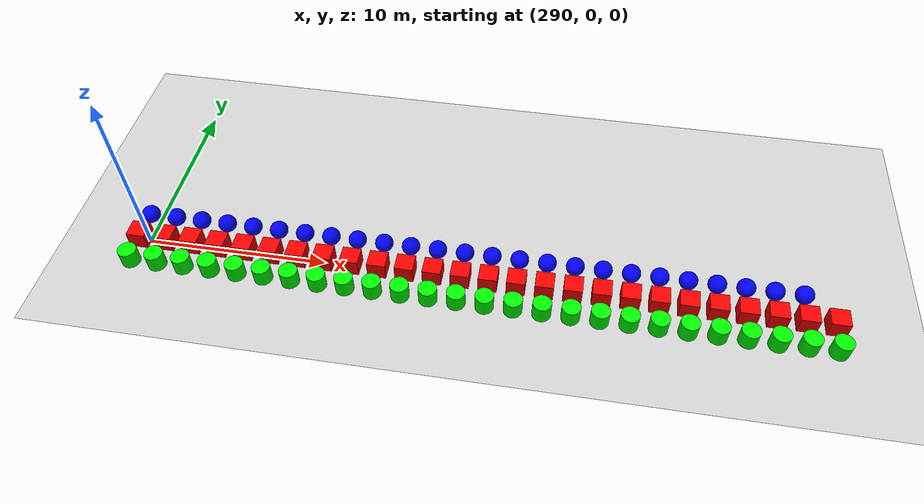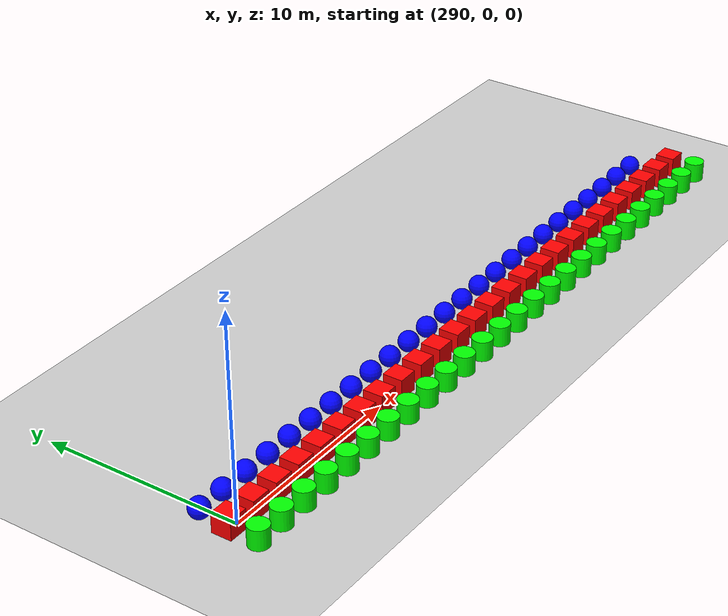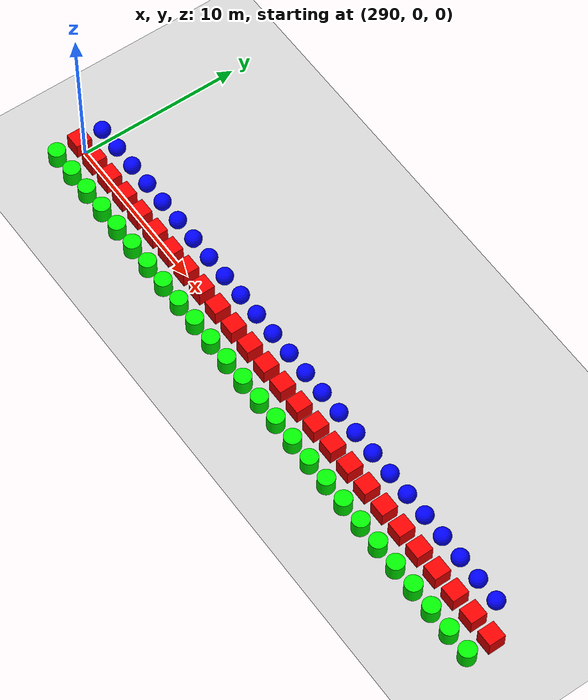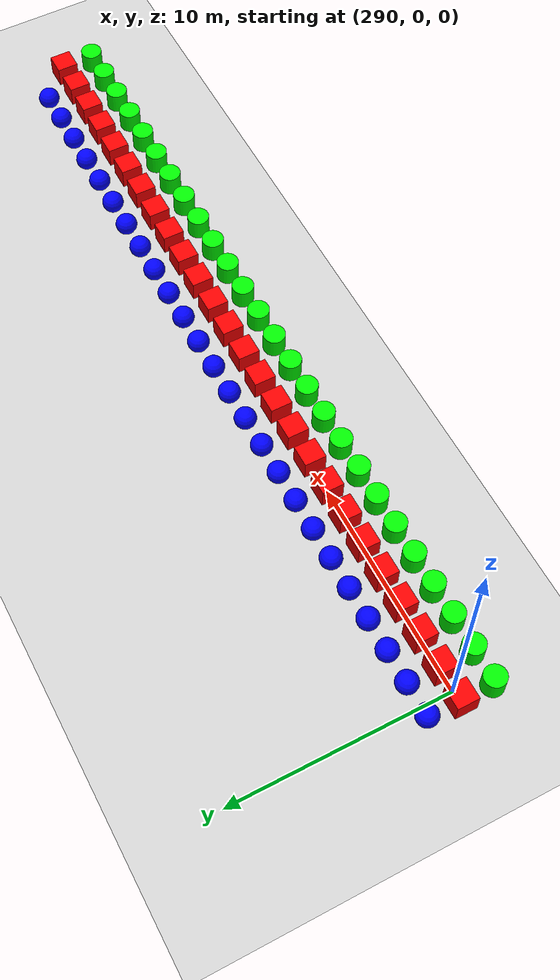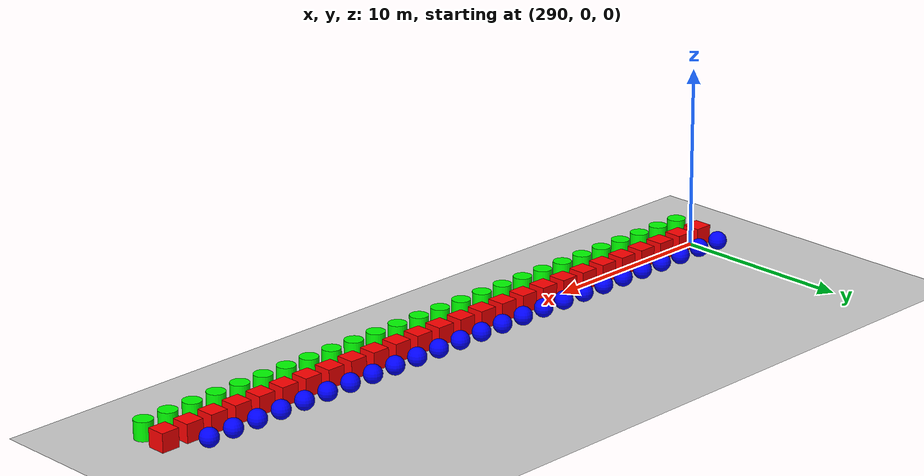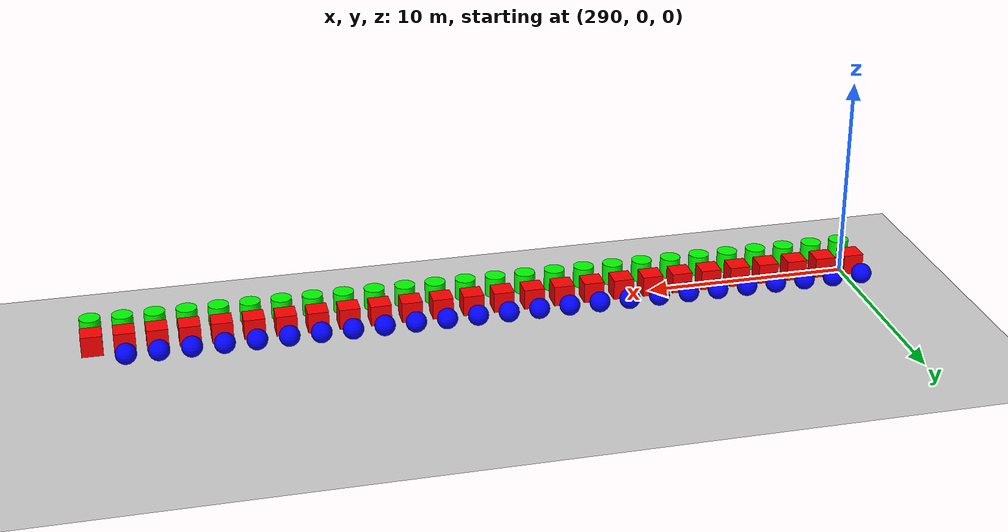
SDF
<sdf version="1.6">
 <world name="shapes">
  <model name="ground_plane">
   <static>true</static>
   <link name="link">
    <collision name="collision">
     <geometry><plane><normal>0 0 1</normal><size>100 100</size></plane></geometry>
    </collision>
    <visual name="visual">
     <geometry><plane><normal>0 0 1</normal><size>100 100</size></plane></geometry>
     <material>
      <ambient>0.8 0.8 0.8 1</ambient>
      <diffuse>0.8 0.8 0.8 1</diffuse>
      <specular>0.8 0.8 0.8 1</specular>
     </material>
    </visual>
   </link>
  </model>
  <model name="box_693">
   <static>false</static>
   <pose>289.5 0 0.5 0 0 0</pose>
   <link name="box_link">
    <inertial>
     <inertia><ixx>1</ixx><ixy>0</ixy><ixz>0</ixz><iyy>1</iyy><iyz>0</iyz><izz>1</izz></inertia>
     <mass>1.0</mass>
    </inertial>
    <collision name="box_collision"><geometry><box><size>1 1 1</size></box></geometry></collision>
    <visual name="box_visual">
     <geometry><box><size>1 1 1</size></box></geometry>
     <material><ambient>1 0 0 1</ambient><diffuse>1 0 0 1</diffuse><specular>1 0 0 1</specular></material>
    </visual>
   </link>
  </model>
  <model name="cylinder_693">
   <static>false</static>
   <pose>289.5 -1.5 0.5 0 0 0</pose>
   <link name="cylinder_link">
    <inertial>
     <inertia><ixx>2</ixx><ixy>0</ixy><ixz>0</ixz><iyy>2</iyy><iyz>0</iyz><izz>2</izz></inertia>
     <mass>2.0</mass>
    </inertial>
    <collision name="cylinder_collision">
     <geometry><cylinder><radius>0.5</radius><length>1.0</length></cylinder></geometry>
    </collision>
    <visual name="cylinder_visual">
     <geometry><cylinder><radius>0.5</radius><length>1.0</length></cylinder></geometry>
     <material><ambient>0 1 0 1</ambient><diffuse>0 1 0 1</diffuse><specular>0 1 0 1</specular></material>
    </visual>
   </link>
  </model>
  <model name="sphere_693">
   <static>false</static>
   <pose>289.5 1.5 0.5 0 0 0</pose>
   <link name="sphere_link">
    <inertial>
     <inertia><ixx>3</ixx><ixy>0</ixy><ixz>0</ixz><iyy>3</iyy><iyz>0</iyz><izz>3</izz></inertia>
     <mass>3.0</mass>
    </inertial>
    <collision name="sphere_collision"><geometry><sphere><radius>0.5</radius></sphere></geometry></collision>
    <visual name="sphere_visual">
     <geometry><sphere><radius>0.5</radius></sphere></geometry>
     <material><ambient>0 0 1 1</ambient><diffuse>0 0 1 1</diffuse><specular>0 0 1 1</specular></material>
    </visual>
   </link>
  </model>
  <model name="box_694">
   <static>false</static>
   <pose>291.0 0 0.5 0 0 0</pose>
   <link name="box_link">
    <inertial>
     <inertia><ixx>1</ixx><ixy>0</ixy><ixz>0</ixz><iyy>1</iyy><iyz>0</iyz><izz>1</izz></inertia>
     <mass>1.0</mass>
    </inertial>
    <collision name="box_collision"><geometry><box><size>1 1 1</size></box></geometry></collision>
    <visual name="box_visual">
     <geometry><box><size>1 1 1</size></box></geometry>
     <material><ambient>1 0 0 1</ambient><diffuse>1 0 0 1</diffuse><specular>1 0 0 1</specular></material>
    </visual>
   </link>
  </model>
  <model name="cylinder_694">
   <static>false</static>
   <pose>291.0 -1.5 0.5 0 0 0</pose>
   <link name="cylinder_link">
    <inertial>
     <inertia><ixx>2</ixx><ixy>0</ixy><ixz>0</ixz><iyy>2</iyy><iyz>0</iyz><izz>2</izz></inertia>
     <mass>2.0</mass>
    </inertial>
    <collision name="cylinder_collision">
     <geometry><cylinder><radius>0.5</radius><length>1.0</length></cylinder></geometry>
    </collision>
    <visual name="cylinder_visual">
     <geometry><cylinder><radius>0.5</radius><length>1.0</length></cylinder></geometry>
     <material><ambient>0 1 0 1</ambient><diffuse>0 1 0 1</diffuse><specular>0 1 0 1</specular></material>
    </visual>
   </link>
  </model>
  <model name="sphere_694">
   <static>false</static>
   <pose>291.0 1.5 0.5 0 0 0</pose>
   <link name="sphere_link">
    <inertial>
     <inertia><ixx>3</ixx><ixy>0</ixy><ixz>0</ixz><iyy>3</iyy><iyz>0</iyz><izz>3</izz></inertia>
     <mass>3.0</mass>
    </inertial>
    <collision name="sphere_collision"><geometry><sphere><radius>0.5</radius></sphere></geometry></collision>
    <visual name="sphere_visual">
     <geometry><sphere><radius>0.5</radius></sphere></geometry>
     <material><ambient>0 0 1 1</ambient><diffuse>0 0 1 1</diffuse><specular>0 0 1 1</specular></material>
    </visual>
   </link>
  </model>
  <model name="box_695">
   <static>false</static>
   <pose>292.5 0 0.5 0 0 0</pose>
   <link name="box_link">
    <inertial>
     <inertia><ixx>1</ixx><ixy>0</ixy><ixz>0</ixz><iyy>1</iyy><iyz>0</iyz><izz>1</izz></inertia>
     <mass>1.0</mass>
    </inertial>
    <collision name="box_collision"><geometry><box><size>1 1 1</size></box></geometry></collision>
    <visual name="box_visual">
     <geometry><box><size>1 1 1</size></box></geometry>
     <material><ambient>1 0 0 1</ambient><diffuse>1 0 0 1</diffuse><specular>1 0 0 1</specular></material>
    </visual>
   </link>
  </model>
  <model name="cylinder_695">
   <static>false</static>
   <pose>292.5 -1.5 0.5 0 0 0</pose>
   <link name="cylinder_link">
    <inertial>
     <inertia><ixx>2</ixx><ixy>0</ixy><ixz>0</ixz><iyy>2</iyy><iyz>0</iyz><izz>2</izz></inertia>
     <mass>2.0</mass>
    </inertial>
    <collision name="cylinder_collision">
     <geometry><cylinder><radius>0.5</radius><length>1.0</length></cylinder></geometry>
    </collision>
    <visual name="cylinder_visual">
     <geometry><cylinder><radius>0.5</radius><length>1.0</length></cylinder></geometry>
     <material><ambient>0 1 0 1</ambient><diffuse>0 1 0 1</diffuse><specular>0 1 0 1</specular></material>
    </visual>
   </link>
  </model>
  <model name="sphere_695">
   <static>false</static>
   <pose>292.5 1.5 0.5 0 0 0</pose>
   <link name="sphere_link">
    <inertial>
     <inertia><ixx>3</ixx><ixy>0</ixy><ixz>0</ixz><iyy>3</iyy><iyz>0</iyz><izz>3</izz></inertia>
     <mass>3.0</mass>
    </inertial>
    <collision name="sphere_collision"><geometry><sphere><radius>0.5</radius></sphere></geometry></collision>
    <visual name="sphere_visual">
     <geometry><sphere><radius>0.5</radius></sphere></geometry>
     <material><ambient>0 0 1 1</ambient><diffuse>0 0 1 1</diffuse><specular>0 0 1 1</specular></material>
    </visual>
   </link>
  </model>
  <model name="box_696">
   <static>false</static>
   <pose>294.0 0 0.5 0 0 0</pose>
   <link name="box_link">
    <inertial>
     <inertia><ixx>1</ixx><ixy>0</ixy><ixz>0</ixz><iyy>1</iyy><iyz>0</iyz><izz>1</izz></inertia>
     <mass>1.0</mass>
    </inertial>
    <collision name="box_collision"><geometry><box><size>1 1 1</size></box></geometry></collision>
    <visual name="box_visual">
     <geometry><box><size>1 1 1</size></box></geometry>
     <material><ambient>1 0 0 1</ambient><diffuse>1 0 0 1</diffuse><specular>1 0 0 1</specular></material>
    </visual>
   </link>
  </model>
  <model name="cylinder_696">
   <static>false</static>
   <pose>294.0 -1.5 0.5 0 0 0</pose>
   <link name="cylinder_link">
    <inertial>
     <inertia><ixx>2</ixx><ixy>0</ixy><ixz>0</ixz><iyy>2</iyy><iyz>0</iyz><izz>2</izz></inertia>
     <mass>2.0</mass>
    </inertial>
    <collision name="cylinder_collision">
     <geometry><cylinder><radius>0.5</radius><length>1.0</length></cylinder></geometry>
    </collision>
    <visual name="cylinder_visual">
     <geometry><cylinder><radius>0.5</radius><length>1.0</length></cylinder></geometry>
     <material><ambient>0 1 0 1</ambient><diffuse>0 1 0 1</diffuse><specular>0 1 0 1</specular></material>
    </visual>
   </link>
  </model>
  <model name="sphere_696">
   <static>false</static>
   <pose>294.0 1.5 0.5 0 0 0</pose>
   <link name="sphere_link">
    <inertial>
     <inertia><ixx>3</ixx><ixy>0</ixy><ixz>0</ixz><iyy>3</iyy><iyz>0</iyz><izz>3</izz></inertia>
     <mass>3.0</mass>
    </inertial>
    <collision name="sphere_collision"><geometry><sphere><radius>0.5</radius></sphere></geometry></collision>
    <visual name="sphere_visual">
     <geometry><sphere><radius>0.5</radius></sphere></geometry>
     <material><ambient>0 0 1 1</ambient><diffuse>0 0 1 1</diffuse><specular>0 0 1 1</specular></material>
    </visual>
   </link>
  </model>
  <model name="box_697">
   <static>false</static>
   <pose>295.5 0 0.5 0 0 0</pose>
   <link name="box_link">
    <inertial>
     <inertia><ixx>1</ixx><ixy>0</ixy><ixz>0</ixz><iyy>1</iyy><iyz>0</iyz><izz>1</izz></inertia>
     <mass>1.0</mass>
    </inertial>
    <collision name="box_collision"><geometry><box><size>1 1 1</size></box></geometry></collision>
    <visual name="box_visual">
     <geometry><box><size>1 1 1</size></box></geometry>
     <material><ambient>1 0 0 1</ambient><diffuse>1 0 0 1</diffuse><specular>1 0 0 1</specular></material>
    </visual>
   </link>
  </model>
  <model name="cylinder_697">
   <static>false</static>
   <pose>295.5 -1.5 0.5 0 0 0</pose>
   <link name="cylinder_link">
    <inertial>
     <inertia><ixx>2</ixx><ixy>0</ixy><ixz>0</ixz><iyy>2</iyy><iyz>0</iyz><izz>2</izz></inertia>
     <mass>2.0</mass>
    </inertial>
    <collision name="cylinder_collision">
     <geometry><cylinder><radius>0.5</radius><length>1.0</length></cylinder></geometry>
    </collision>
    <visual name="cylinder_visual">
     <geometry><cylinder><radius>0.5</radius><length>1.0</length></cylinder></geometry>
     <material><ambient>0 1 0 1</ambient><diffuse>0 1 0 1</diffuse><specular>0 1 0 1</specular></material>
    </visual>
   </link>
  </model>
  <model name="sphere_697">
   <static>false</static>
   <pose>295.5 1.5 0.5 0 0 0</pose>
   <link name="sphere_link">
    <inertial>
     <inertia><ixx>3</ixx><ixy>0</ixy><ixz>0</ixz><iyy>3</iyy><iyz>0</iyz><izz>3</izz></inertia>
     <mass>3.0</mass>
    </inertial>
    <collision name="sphere_collision"><geometry><sphere><radius>0.5</radius></sphere></geometry></collision>
    <visual name="sphere_visual">
     <geometry><sphere><radius>0.5</radius></sphere></geometry>
     <material><ambient>0 0 1 1</ambient><diffuse>0 0 1 1</diffuse><specular>0 0 1 1</specular></material>
    </visual>
   </link>
  </model>
  <model name="box_698">
   <static>false</static>
   <pose>297.0 0 0.5 0 0 0</pose>
   <link name="box_link">
    <inertial>
     <inertia><ixx>1</ixx><ixy>0</ixy><ixz>0</ixz><iyy>1</iyy><iyz>0</iyz><izz>1</izz></inertia>
     <mass>1.0</mass>
    </inertial>
    <collision name="box_collision"><geometry><box><size>1 1 1</size></box></geometry></collision>
    <visual name="box_visual">
     <geometry><box><size>1 1 1</size></box></geometry>
     <material><ambient>1 0 0 1</ambient><diffuse>1 0 0 1</diffuse><specular>1 0 0 1</specular></material>
    </visual>
   </link>
  </model>
  <model name="cylinder_698">
   <static>false</static>
   <pose>297.0 -1.5 0.5 0 0 0</pose>
   <link name="cylinder_link">
    <inertial>
     <inertia><ixx>2</ixx><ixy>0</ixy><ixz>0</ixz><iyy>2</iyy><iyz>0</iyz><izz>2</izz></inertia>
     <mass>2.0</mass>
    </inertial>
    <collision name="cylinder_collision">
     <geometry><cylinder><radius>0.5</radius><length>1.0</length></cylinder></geometry>
    </collision>
    <visual name="cylinder_visual">
     <geometry><cylinder><radius>0.5</radius><length>1.0</length></cylinder></geometry>
     <material><ambient>0 1 0 1</ambient><diffuse>0 1 0 1</diffuse><specular>0 1 0 1</specular></material>
    </visual>
   </link>
  </model>
  <model name="sphere_698">
   <static>false</static>
   <pose>297.0 1.5 0.5 0 0 0</pose>
   <link name="sphere_link">
    <inertial>
     <inertia><ixx>3</ixx><ixy>0</ixy><ixz>0</ixz><iyy>3</iyy><iyz>0</iyz><izz>3</izz></inertia>
     <mass>3.0</mass>
    </inertial>
    <collision name="sphere_collision"><geometry><sphere><radius>0.5</radius></sphere></geometry></collision>
    <visual name="sphere_visual">
     <geometry><sphere><radius>0.5</radius></sphere></geometry>
     <material><ambient>0 0 1 1</ambient><diffuse>0 0 1 1</diffuse><specular>0 0 1 1</specular></material>
    </visual>
   </link>
  </model>
  <model name="box_699">
   <static>false</static>
   <pose>298.5 0 0.5 0 0 0</pose>
   <link name="box_link">
    <inertial>
     <inertia><ixx>1</ixx><ixy>0</ixy><ixz>0</ixz><iyy>1</iyy><iyz>0</iyz><izz>1</izz></inertia>
     <mass>1.0</mass>
    </inertial>
    <collision name="box_collision"><geometry><box><size>1 1 1</size></box></geometry></collision>
    <visual name="box_visual">
     <geometry><box><size>1 1 1</size></box></geometry>
     <material><ambient>1 0 0 1</ambient><diffuse>1 0 0 1</diffuse><specular>1 0 0 1</specular></material>
    </visual>
   </link>
  </model>
  <model name="cylinder_699">
   <static>false</static>
   <pose>298.5 -1.5 0.5 0 0 0</pose>
   <link name="cylinder_link">
    <inertial>
     <inertia><ixx>2</ixx><ixy>0</ixy><ixz>0</ixz><iyy>2</iyy><iyz>0</iyz><izz>2</izz></inertia>
     <mass>2.0</mass>
    </inertial>
    <collision name="cylinder_collision">
     <geometry><cylinder><radius>0.5</radius><length>1.0</length></cylinder></geometry>
    </collision>
    <visual name="cylinder_visual">
     <geometry><cylinder><radius>0.5</radius><length>1.0</length></cylinder></geometry>
     <material><ambient>0 1 0 1</ambient><diffuse>0 1 0 1</diffuse><specular>0 1 0 1</specular></material>
    </visual>
   </link>
  </model>
  <model name="sphere_699">
   <static>false</static>
   <pose>298.5 1.5 0.5 0 0 0</pose>
   <link name="sphere_link">
    <inertial>
     <inertia><ixx>3</ixx><ixy>0</ixy><ixz>0</ixz><iyy>3</iyy><iyz>0</iyz><izz>3</izz></inertia>
     <mass>3.0</mass>
    </inertial>
    <collision name="sphere_collision"><geometry><sphere><radius>0.5</radius></sphere></geometry></collision>
    <visual name="sphere_visual">
     <geometry><sphere><radius>0.5</radius></sphere></geometry>
     <material><ambient>0 0 1 1</ambient><diffuse>0 0 1 1</diffuse><specular>0 0 1 1</specular></material>
    </visual>
   </link>
  </model>
  <model name="box_700">
   <static>false</static>
   <pose>300.0 0 0.5 0 0 0</pose>
   <link name="box_link">
    <inertial>
     <inertia><ixx>1</ixx><ixy>0</ixy><ixz>0</ixz><iyy>1</iyy><iyz>0</iyz><izz>1</izz></inertia>
     <mass>1.0</mass>
    </inertial>
    <collision name="box_collision"><geometry><box><size>1 1 1</size></box></geometry></collision>
    <visual name="box_visual">
     <geometry><box><size>1 1 1</size></box></geometry>
     <material><ambient>1 0 0 1</ambient><diffuse>1 0 0 1</diffuse><specular>1 0 0 1</specular></material>
    </visual>
   </link>
  </model>
  <model name="cylinder_700">
   <static>false</static>
   <pose>300.0 -1.5 0.5 0 0 0</pose>
   <link name="cylinder_link">
    <inertial>
     <inertia><ixx>2</ixx><ixy>0</ixy><ixz>0</ixz><iyy>2</iyy><iyz>0</iyz><izz>2</izz></inertia>
     <mass>2.0</mass>
    </inertial>
    <collision name="cylinder_collision">
     <geometry><cylinder><radius>0.5</radius><length>1.0</length></cylinder></geometry>
    </collision>
    <visual name="cylinder_visual">
     <geometry><cylinder><radius>0.5</radius><length>1.0</length></cylinder></geometry>
     <material><ambient>0 1 0 1</ambient><diffuse>0 1 0 1</diffuse><specular>0 1 0 1</specular></material>
    </visual>
   </link>
  </model>
  <model name="sphere_700">
   <static>false</static>
   <pose>300.0 1.5 0.5 0 0 0</pose>
   <link name="sphere_link">
    <inertial>
     <inertia><ixx>3</ixx><ixy>0</ixy><ixz>0</ixz><iyy>3</iyy><iyz>0</iyz><izz>3</izz></inertia>
     <mass>3.0</mass>
    </inertial>
    <collision name="sphere_collision"><geometry><sphere><radius>0.5</radius></sphere></geometry></collision>
    <visual name="sphere_visual">
     <geometry><sphere><radius>0.5</radius></sphere></geometry>
     <material><ambient>0 0 1 1</ambient><diffuse>0 0 1 1</diffuse><specular>0 0 1 1</specular></material>
    </visual>
   </link>
  </model>
  <model name="box_701">
   <static>false</static>
   <pose>301.5 0 0.5 0 0 0</pose>
   <link name="box_link">
    <inertial>
     <inertia><ixx>1</ixx><ixy>0</ixy><ixz>0</ixz><iyy>1</iyy><iyz>0</iyz><izz>1</izz></inertia>
     <mass>1.0</mass>
    </inertial>
    <collision name="box_collision"><geometry><box><size>1 1 1</size></box></geometry></collision>
    <visual name="box_visual">
     <geometry><box><size>1 1 1</size></box></geometry>
     <material><ambient>1 0 0 1</ambient><diffuse>1 0 0 1</diffuse><specular>1 0 0 1</specular></material>
    </visual>
   </link>
  </model>
  <model name="cylinder_701">
   <static>false</static>
   <pose>301.5 -1.5 0.5 0 0 0</pose>
   <link name="cylinder_link">
    <inertial>
     <inertia><ixx>2</ixx><ixy>0</ixy><ixz>0</ixz><iyy>2</iyy><iyz>0</iyz><izz>2</izz></inertia>
     <mass>2.0</mass>
    </inertial>
    <collision name="cylinder_collision">
     <geometry><cylinder><radius>0.5</radius><length>1.0</length></cylinder></geometry>
    </collision>
    <visual name="cylinder_visual">
     <geometry><cylinder><radius>0.5</radius><length>1.0</length></cylinder></geometry>
     <material><ambient>0 1 0 1</ambient><diffuse>0 1 0 1</diffuse><specular>0 1 0 1</specular></material>
    </visual>
   </link>
  </model>
  <model name="sphere_701">
   <static>false</static>
   <pose>301.5 1.5 0.5 0 0 0</pose>
   <link name="sphere_link">
    <inertial>
     <inertia><ixx>3</ixx><ixy>0</ixy><ixz>0</ixz><iyy>3</iyy><iyz>0</iyz><izz>3</izz></inertia>
     <mass>3.0</mass>
    </inertial>
    <collision name="sphere_collision"><geometry><sphere><radius>0.5</radius></sphere></geometry></collision>
    <visual name="sphere_visual">
     <geometry><sphere><radius>0.5</radius></sphere></geometry>
     <material><ambient>0 0 1 1</ambient><diffuse>0 0 1 1</diffuse><specular>0 0 1 1</specular></material>
    </visual>
   </link>
  </model>
  <model name="box_702">
   <static>false</static>
   <pose>303.0 0 0.5 0 0 0</pose>
   <link name="box_link">
    <inertial>
     <inertia><ixx>1</ixx><ixy>0</ixy><ixz>0</ixz><iyy>1</iyy><iyz>0</iyz><izz>1</izz></inertia>
     <mass>1.0</mass>
    </inertial>
    <collision name="box_collision"><geometry><box><size>1 1 1</size></box></geometry></collision>
    <visual name="box_visual">
     <geometry><box><size>1 1 1</size></box></geometry>
     <material><ambient>1 0 0 1</ambient><diffuse>1 0 0 1</diffuse><specular>1 0 0 1</specular></material>
    </visual>
   </link>
  </model>
  <model name="cylinder_702">
   <static>false</static>
   <pose>303.0 -1.5 0.5 0 0 0</pose>
   <link name="cylinder_link">
    <inertial>
     <inertia><ixx>2</ixx><ixy>0</ixy><ixz>0</ixz><iyy>2</iyy><iyz>0</iyz><izz>2</izz></inertia>
     <mass>2.0</mass>
    </inertial>
    <collision name="cylinder_collision">
     <geometry><cylinder><radius>0.5</radius><length>1.0</length></cylinder></geometry>
    </collision>
    <visual name="cylinder_visual">
     <geometry><cylinder><radius>0.5</radius><length>1.0</length></cylinder></geometry>
     <material><ambient>0 1 0 1</ambient><diffuse>0 1 0 1</diffuse><specular>0 1 0 1</specular></material>
    </visual>
   </link>
  </model>
  <model name="sphere_702">
   <static>false</static>
   <pose>303.0 1.5 0.5 0 0 0</pose>
   <link name="sphere_link">
    <inertial>
     <inertia><ixx>3</ixx><ixy>0</ixy><ixz>0</ixz><iyy>3</iyy><iyz>0</iyz><izz>3</izz></inertia>
     <mass>3.0</mass>
    </inertial>
    <collision name="sphere_collision"><geometry><sphere><radius>0.5</radius></sphere></geometry></collision>
    <visual name="sphere_visual">
     <geometry><sphere><radius>0.5</radius></sphere></geometry>
     <material><ambient>0 0 1 1</ambient><diffuse>0 0 1 1</diffuse><specular>0 0 1 1</specular></material>
    </visual>
   </link>
  </model>
  <model name="box_703">
   <static>false</static>
   <pose>304.5 0 0.5 0 0 0</pose>
   <link name="box_link">
    <inertial>
     <inertia><ixx>1</ixx><ixy>0</ixy><ixz>0</ixz><iyy>1</iyy><iyz>0</iyz><izz>1</izz></inertia>
     <mass>1.0</mass>
    </inertial>
    <collision name="box_collision"><geometry><box><size>1 1 1</size></box></geometry></collision>
    <visual name="box_visual">
     <geometry><box><size>1 1 1</size></box></geometry>
     <material><ambient>1 0 0 1</ambient><diffuse>1 0 0 1</diffuse><specular>1 0 0 1</specular></material>
    </visual>
   </link>
  </model>
  <model name="cylinder_703">
   <static>false</static>
   <pose>304.5 -1.5 0.5 0 0 0</pose>
   <link name="cylinder_link">
    <inertial>
     <inertia><ixx>2</ixx><ixy>0</ixy><ixz>0</ixz><iyy>2</iyy><iyz>0</iyz><izz>2</izz></inertia>
     <mass>2.0</mass>
    </inertial>
    <collision name="cylinder_collision">
     <geometry><cylinder><radius>0.5</radius><length>1.0</length></cylinder></geometry>
    </collision>
    <visual name="cylinder_visual">
     <geometry><cylinder><radius>0.5</radius><length>1.0</length></cylinder></geometry>
     <material><ambient>0 1 0 1</ambient><diffuse>0 1 0 1</diffuse><specular>0 1 0 1</specular></material>
    </visual>
   </link>
  </model>
  <model name="sphere_703">
   <static>false</static>
   <pose>304.5 1.5 0.5 0 0 0</pose>
   <link name="sphere_link">
    <inertial>
     <inertia><ixx>3</ixx><ixy>0</ixy><ixz>0</ixz><iyy>3</iyy><iyz>0</iyz><izz>3</izz></inertia>
     <mass>3.0</mass>
    </inertial>
    <collision name="sphere_collision"><geometry><sphere><radius>0.5</radius></sphere></geometry></collision>
    <visual name="sphere_visual">
     <geometry><sphere><radius>0.5</radius></sphere></geometry>
     <material><ambient>0 0 1 1</ambient><diffuse>0 0 1 1</diffuse><specular>0 0 1 1</specular></material>
    </visual>
   </link>
  </model>
  <model name="box_704">
   <static>false</static>
   <pose>306.0 0 0.5 0 0 0</pose>
   <link name="box_link">
    <inertial>
     <inertia><ixx>1</ixx><ixy>0</ixy><ixz>0</ixz><iyy>1</iyy><iyz>0</iyz><izz>1</izz></inertia>
     <mass>1.0</mass>
    </inertial>
    <collision name="box_collision"><geometry><box><size>1 1 1</size></box></geometry></collision>
    <visual name="box_visual">
     <geometry><box><size>1 1 1</size></box></geometry>
     <material><ambient>1 0 0 1</ambient><diffuse>1 0 0 1</diffuse><specular>1 0 0 1</specular></material>
    </visual>
   </link>
  </model>
  <model name="cylinder_704">
   <static>false</static>
   <pose>306.0 -1.5 0.5 0 0 0</pose>
   <link name="cylinder_link">
    <inertial>
     <inertia><ixx>2</ixx><ixy>0</ixy><ixz>0</ixz><iyy>2</iyy><iyz>0</iyz><izz>2</izz></inertia>
     <mass>2.0</mass>
    </inertial>
    <collision name="cylinder_collision">
     <geometry><cylinder><radius>0.5</radius><length>1.0</length></cylinder></geometry>
    </collision>
    <visual name="cylinder_visual">
     <geometry><cylinder><radius>0.5</radius><length>1.0</length></cylinder></geometry>
     <material><ambient>0 1 0 1</ambient><diffuse>0 1 0 1</diffuse><specular>0 1 0 1</specular></material>
    </visual>
   </link>
  </model>
  <model name="sphere_704">
   <static>false</static>
   <pose>306.0 1.5 0.5 0 0 0</pose>
   <link name="sphere_link">
    <inertial>
     <inertia><ixx>3</ixx><ixy>0</ixy><ixz>0</ixz><iyy>3</iyy><iyz>0</iyz><izz>3</izz></inertia>
     <mass>3.0</mass>
    </inertial>
    <collision name="sphere_collision"><geometry><sphere><radius>0.5</radius></sphere></geometry></collision>
    <visual name="sphere_visual">
     <geometry><sphere><radius>0.5</radius></sphere></geometry>
     <material><ambient>0 0 1 1</ambient><diffuse>0 0 1 1</diffuse><specular>0 0 1 1</specular></material>
    </visual>
   </link>
  </model>
  <model name="box_705">
   <static>false</static>
   <pose>307.5 0 0.5 0 0 0</pose>
   <link name="box_link">
    <inertial>
     <inertia><ixx>1</ixx><ixy>0</ixy><ixz>0</ixz><iyy>1</iyy><iyz>0</iyz><izz>1</izz></inertia>
     <mass>1.0</mass>
    </inertial>
    <collision name="box_collision"><geometry><box><size>1 1 1</size></box></geometry></collision>
    <visual name="box_visual">
     <geometry><box><size>1 1 1</size></box></geometry>
     <material><ambient>1 0 0 1</ambient><diffuse>1 0 0 1</diffuse><specular>1 0 0 1</specular></material>
    </visual>
   </link>
  </model>
  <model name="cylinder_705">
   <static>false</static>
   <pose>307.5 -1.5 0.5 0 0 0</pose>
   <link name="cylinder_link">
    <inertial>
     <inertia><ixx>2</ixx><ixy>0</ixy><ixz>0</ixz><iyy>2</iyy><iyz>0</iyz><izz>2</izz></inertia>
     <mass>2.0</mass>
    </inertial>
    <collision name="cylinder_collision">
     <geometry><cylinder><radius>0.5</radius><length>1.0</length></cylinder></geometry>
    </collision>
    <visual name="cylinder_visual">
     <geometry><cylinder><radius>0.5</radius><length>1.0</length></cylinder></geometry>
     <material><ambient>0 1 0 1</ambient><diffuse>0 1 0 1</diffuse><specular>0 1 0 1</specular></material>
    </visual>
   </link>
  </model>
  <model name="sphere_705">
   <static>false</static>
   <pose>307.5 1.5 0.5 0 0 0</pose>
   <link name="sphere_link">
    <inertial>
     <inertia><ixx>3</ixx><ixy>0</ixy><ixz>0</ixz><iyy>3</iyy><iyz>0</iyz><izz>3</izz></inertia>
     <mass>3.0</mass>
    </inertial>
    <collision name="sphere_collision"><geometry><sphere><radius>0.5</radius></sphere></geometry></collision>
    <visual name="sphere_visual">
     <geometry><sphere><radius>0.5</radius></sphere></geometry>
     <material><ambient>0 0 1 1</ambient><diffuse>0 0 1 1</diffuse><specular>0 0 1 1</specular></material>
    </visual>
   </link>
  </model>
  <model name="box_706">
   <static>false</static>
   <pose>309.0 0 0.5 0 0 0</pose>
   <link name="box_link">
    <inertial>
     <inertia><ixx>1</ixx><ixy>0</ixy><ixz>0</ixz><iyy>1</iyy><iyz>0</iyz><izz>1</izz></inertia>
     <mass>1.0</mass>
    </inertial>
    <collision name="box_collision"><geometry><box><size>1 1 1</size></box></geometry></collision>
    <visual name="box_visual">
     <geometry><box><size>1 1 1</size></box></geometry>
     <material><ambient>1 0 0 1</ambient><diffuse>1 0 0 1</diffuse><specular>1 0 0 1</specular></material>
    </visual>
   </link>
  </model>
  <model name="cylinder_706">
   <static>false</static>
   <pose>309.0 -1.5 0.5 0 0 0</pose>
   <link name="cylinder_link">
    <inertial>
     <inertia><ixx>2</ixx><ixy>0</ixy><ixz>0</ixz><iyy>2</iyy><iyz>0</iyz><izz>2</izz></inertia>
     <mass>2.0</mass>
    </inertial>
    <collision name="cylinder_collision">
     <geometry><cylinder><radius>0.5</radius><length>1.0</length></cylinder></geometry>
    </collision>
    <visual name="cylinder_visual">
     <geometry><cylinder><radius>0.5</radius><length>1.0</length></cylinder></geometry>
     <material><ambient>0 1 0 1</ambient><diffuse>0 1 0 1</diffuse><specular>0 1 0 1</specular></material>
    </visual>
   </link>
  </model>
  <model name="sphere_706">
   <static>false</static>
   <pose>309.0 1.5 0.5 0 0 0</pose>
   <link name="sphere_link">
    <inertial>
     <inertia><ixx>3</ixx><ixy>0</ixy><ixz>0</ixz><iyy>3</iyy><iyz>0</iyz><izz>3</izz></inertia>
     <mass>3.0</mass>
    </inertial>
    <collision name="sphere_collision"><geometry><sphere><radius>0.5</radius></sphere></geometry></collision>
    <visual name="sphere_visual">
     <geometry><sphere><radius>0.5</radius></sphere></geometry>
     <material><ambient>0 0 1 1</ambient><diffuse>0 0 1 1</diffuse><specular>0 0 1 1</specular></material>
    </visual>
   </link>
  </model>
  <model name="box_707">
   <static>false</static>
   <pose>310.5 0 0.5 0 0 0</pose>
   <link name="box_link">
    <inertial>
     <inertia><ixx>1</ixx><ixy>0</ixy><ixz>0</ixz><iyy>1</iyy><iyz>0</iyz><izz>1</izz></inertia>
     <mass>1.0</mass>
    </inertial>
    <collision name="box_collision"><geometry><box><size>1 1 1</size></box></geometry></collision>
    <visual name="box_visual">
     <geometry><box><size>1 1 1</size></box></geometry>
     <material><ambient>1 0 0 1</ambient><diffuse>1 0 0 1</diffuse><specular>1 0 0 1</specular></material>
    </visual>
   </link>
  </model>
  <model name="cylinder_707">
   <static>false</static>
   <pose>310.5 -1.5 0.5 0 0 0</pose>
   <link name="cylinder_link">
    <inertial>
     <inertia><ixx>2</ixx><ixy>0</ixy><ixz>0</ixz><iyy>2</iyy><iyz>0</iyz><izz>2</izz></inertia>
     <mass>2.0</mass>
    </inertial>
    <collision name="cylinder_collision">
     <geometry><cylinder><radius>0.5</radius><length>1.0</length></cylinder></geometry>
    </collision>
    <visual name="cylinder_visual">
     <geometry><cylinder><radius>0.5</radius><length>1.0</length></cylinder></geometry>
     <material><ambient>0 1 0 1</ambient><diffuse>0 1 0 1</diffuse><specular>0 1 0 1</specular></material>
    </visual>
   </link>
  </model>
  <model name="sphere_707">
   <static>false</static>
   <pose>310.5 1.5 0.5 0 0 0</pose>
   <link name="sphere_link">
    <inertial>
     <inertia><ixx>3</ixx><ixy>0</ixy><ixz>0</ixz><iyy>3</iyy><iyz>0</iyz><izz>3</izz></inertia>
     <mass>3.0</mass>
    </inertial>
    <collision name="sphere_collision"><geometry><sphere><radius>0.5</radius></sphere></geometry></collision>
    <visual name="sphere_visual">
     <geometry><sphere><radius>0.5</radius></sphere></geometry>
     <material><ambient>0 0 1 1</ambient><diffuse>0 0 1 1</diffuse><specular>0 0 1 1</specular></material>
    </visual>
   </link>
  </model>
  <model name="box_708">
   <static>false</static>
   <pose>312.0 0 0.5 0 0 0</pose>
   <link name="box_link">
    <inertial>
     <inertia><ixx>1</ixx><ixy>0</ixy><ixz>0</ixz><iyy>1</iyy><iyz>0</iyz><izz>1</izz></inertia>
     <mass>1.0</mass>
    </inertial>
    <collision name="box_collision"><geometry><box><size>1 1 1</size></box></geometry></collision>
    <visual name="box_visual">
     <geometry><box><size>1 1 1</size></box></geometry>
     <material><ambient>1 0 0 1</ambient><diffuse>1 0 0 1</diffuse><specular>1 0 0 1</specular></material>
    </visual>
   </link>
  </model>
  <model name="cylinder_708">
   <static>false</static>
   <pose>312.0 -1.5 0.5 0 0 0</pose>
   <link name="cylinder_link">
    <inertial>
     <inertia><ixx>2</ixx><ixy>0</ixy><ixz>0</ixz><iyy>2</iyy><iyz>0</iyz><izz>2</izz></inertia>
     <mass>2.0</mass>
    </inertial>
    <collision name="cylinder_collision">
     <geometry><cylinder><radius>0.5</radius><length>1.0</length></cylinder></geometry>
    </collision>
    <visual name="cylinder_visual">
     <geometry><cylinder><radius>0.5</radius><length>1.0</length></cylinder></geometry>
     <material><ambient>0 1 0 1</ambient><diffuse>0 1 0 1</diffuse><specular>0 1 0 1</specular></material>
    </visual>
   </link>
  </model>
  <model name="sphere_708">
   <static>false</static>
   <pose>312.0 1.5 0.5 0 0 0</pose>
   <link name="sphere_link">
    <inertial>
     <inertia><ixx>3</ixx><ixy>0</ixy><ixz>0</ixz><iyy>3</iyy><iyz>0</iyz><izz>3</izz></inertia>
     <mass>3.0</mass>
    </inertial>
    <collision name="sphere_collision"><geometry><sphere><radius>0.5</radius></sphere></geometry></collision>
    <visual name="sphere_visual">
     <geometry><sphere><radius>0.5</radius></sphere></geometry>
     <material><ambient>0 0 1 1</ambient><diffuse>0 0 1 1</diffuse><specular>0 0 1 1</specular></material>
    </visual>
   </link>
  </model>
  <model name="box_709">
   <static>false</static>
   <pose>313.5 0 0.5 0 0 0</pose>
   <link name="box_link">
    <inertial>
     <inertia><ixx>1</ixx><ixy>0</ixy><ixz>0</ixz><iyy>1</iyy><iyz>0</iyz><izz>1</izz></inertia>
     <mass>1.0</mass>
    </inertial>
    <collision name="box_collision"><geometry><box><size>1 1 1</size></box></geometry></collision>
    <visual name="box_visual">
     <geometry><box><size>1 1 1</size></box></geometry>
     <material><ambient>1 0 0 1</ambient><diffuse>1 0 0 1</diffuse><specular>1 0 0 1</specular></material>
    </visual>
   </link>
  </model>
  <model name="cylinder_709">
   <static>false</static>
   <pose>313.5 -1.5 0.5 0 0 0</pose>
   <link name="cylinder_link">
    <inertial>
     <inertia><ixx>2</ixx><ixy>0</ixy><ixz>0</ixz><iyy>2</iyy><iyz>0</iyz><izz>2</izz></inertia>
     <mass>2.0</mass>
    </inertial>
    <collision name="cylinder_collision">
     <geometry><cylinder><radius>0.5</radius><length>1.0</length></cylinder></geometry>
    </collision>
    <visual name="cylinder_visual">
     <geometry><cylinder><radius>0.5</radius><length>1.0</length></cylinder></geometry>
     <material><ambient>0 1 0 1</ambient><diffuse>0 1 0 1</diffuse><specular>0 1 0 1</specular></material>
    </visual>
   </link>
  </model>
  <model name="sphere_709">
   <static>false</static>
   <pose>313.5 1.5 0.5 0 0 0</pose>
   <link name="sphere_link">
    <inertial>
     <inertia><ixx>3</ixx><ixy>0</ixy><ixz>0</ixz><iyy>3</iyy><iyz>0</iyz><izz>3</izz></inertia>
     <mass>3.0</mass>
    </inertial>
    <collision name="sphere_collision"><geometry><sphere><radius>0.5</radius></sphere></geometry></collision>
    <visual name="sphere_visual">
     <geometry><sphere><radius>0.5</radius></sphere></geometry>
     <material><ambient>0 0 1 1</ambient><diffuse>0 0 1 1</diffuse><specular>0 0 1 1</specular></material>
    </visual>
   </link>
  </model>
  <model name="box_710">
   <static>false</static>
   <pose>315.0 0 0.5 0 0 0</pose>
   <link name="box_link">
    <inertial>
     <inertia><ixx>1</ixx><ixy>0</ixy><ixz>0</ixz><iyy>1</iyy><iyz>0</iyz><izz>1</izz></inertia>
     <mass>1.0</mass>
    </inertial>
    <collision name="box_collision"><geometry><box><size>1 1 1</size></box></geometry></collision>
    <visual name="box_visual">
     <geometry><box><size>1 1 1</size></box></geometry>
     <material><ambient>1 0 0 1</ambient><diffuse>1 0 0 1</diffuse><specular>1 0 0 1</specular></material>
    </visual>
   </link>
  </model>
  <model name="cylinder_710">
   <static>false</static>
   <pose>315.0 -1.5 0.5 0 0 0</pose>
   <link name="cylinder_link">
    <inertial>
     <inertia><ixx>2</ixx><ixy>0</ixy><ixz>0</ixz><iyy>2</iyy><iyz>0</iyz><izz>2</izz></inertia>
     <mass>2.0</mass>
    </inertial>
    <collision name="cylinder_collision">
     <geometry><cylinder><radius>0.5</radius><length>1.0</length></cylinder></geometry>
    </collision>
    <visual name="cylinder_visual">
     <geometry><cylinder><radius>0.5</radius><length>1.0</length></cylinder></geometry>
     <material><ambient>0 1 0 1</ambient><diffuse>0 1 0 1</diffuse><specular>0 1 0 1</specular></material>
    </visual>
   </link>
  </model>
  <model name="sphere_710">
   <static>false</static>
   <pose>315.0 1.5 0.5 0 0 0</pose>
   <link name="sphere_link">
    <inertial>
     <inertia><ixx>3</ixx><ixy>0</ixy><ixz>0</ixz><iyy>3</iyy><iyz>0</iyz><izz>3</izz></inertia>
     <mass>3.0</mass>
    </inertial>
    <collision name="sphere_collision"><geometry><sphere><radius>0.5</radius></sphere></geometry></collision>
    <visual name="sphere_visual">
     <geometry><sphere><radius>0.5</radius></sphere></geometry>
     <material><ambient>0 0 1 1</ambient><diffuse>0 0 1 1</diffuse><specular>0 0 1 1</specular></material>
    </visual>
   </link>
  </model>
  <model name="box_711">
   <static>false</static>
   <pose>316.5 0 0.5 0 0 0</pose>
   <link name="box_link">
    <inertial>
     <inertia><ixx>1</ixx><ixy>0</ixy><ixz>0</ixz><iyy>1</iyy><iyz>0</iyz><izz>1</izz></inertia>
     <mass>1.0</mass>
    </inertial>
    <collision name="box_collision"><geometry><box><size>1 1 1</size></box></geometry></collision>
    <visual name="box_visual">
     <geometry><box><size>1 1 1</size></box></geometry>
     <material><ambient>1 0 0 1</ambient><diffuse>1 0 0 1</diffuse><specular>1 0 0 1</specular></material>
    </visual>
   </link>
  </model>
  <model name="cylinder_711">
   <static>false</static>
   <pose>316.5 -1.5 0.5 0 0 0</pose>
   <link name="cylinder_link">
    <inertial>
     <inertia><ixx>2</ixx><ixy>0</ixy><ixz>0</ixz><iyy>2</iyy><iyz>0</iyz><izz>2</izz></inertia>
     <mass>2.0</mass>
    </inertial>
    <collision name="cylinder_collision">
     <geometry><cylinder><radius>0.5</radius><length>1.0</length></cylinder></geometry>
    </collision>
    <visual name="cylinder_visual">
     <geometry><cylinder><radius>0.5</radius><length>1.0</length></cylinder></geometry>
     <material><ambient>0 1 0 1</ambient><diffuse>0 1 0 1</diffuse><specular>0 1 0 1</specular></material>
    </visual>
   </link>
  </model>
  <model name="sphere_711">
   <static>false</static>
   <pose>316.5 1.5 0.5 0 0 0</pose>
   <link name="sphere_link">
    <inertial>
     <inertia><ixx>3</ixx><ixy>0</ixy><ixz>0</ixz><iyy>3</iyy><iyz>0</iyz><izz>3</izz></inertia>
     <mass>3.0</mass>
    </inertial>
    <collision name="sphere_collision"><geometry><sphere><radius>0.5</radius></sphere></geometry></collision>
    <visual name="sphere_visual">
     <geometry><sphere><radius>0.5</radius></sphere></geometry>
     <material><ambient>0 0 1 1</ambient><diffuse>0 0 1 1</diffuse><specular>0 0 1 1</specular></material>
    </visual>
   </link>
  </model>
  <model name="box_712">
   <static>false</static>
   <pose>318.0 0 0.5 0 0 0</pose>
   <link name="box_link">
    <inertial>
     <inertia><ixx>1</ixx><ixy>0</ixy><ixz>0</ixz><iyy>1</iyy><iyz>0</iyz><izz>1</izz></inertia>
     <mass>1.0</mass>
    </inertial>
    <collision name="box_collision"><geometry><box><size>1 1 1</size></box></geometry></collision>
    <visual name="box_visual">
     <geometry><box><size>1 1 1</size></box></geometry>
     <material><ambient>1 0 0 1</ambient><diffuse>1 0 0 1</diffuse><specular>1 0 0 1</specular></material>
    </visual>
   </link>
  </model>
  <model name="cylinder_712">
   <static>false</static>
   <pose>318.0 -1.5 0.5 0 0 0</pose>
   <link name="cylinder_link">
    <inertial>
     <inertia><ixx>2</ixx><ixy>0</ixy><ixz>0</ixz><iyy>2</iyy><iyz>0</iyz><izz>2</izz></inertia>
     <mass>2.0</mass>
    </inertial>
    <collision name="cylinder_collision">
     <geometry><cylinder><radius>0.5</radius><length>1.0</length></cylinder></geometry>
    </collision>
    <visual name="cylinder_visual">
     <geometry><cylinder><radius>0.5</radius><length>1.0</length></cylinder></geometry>
     <material><ambient>0 1 0 1</ambient><diffuse>0 1 0 1</diffuse><specular>0 1 0 1</specular></material>
    </visual>
   </link>
  </model>
  <model name="sphere_712">
   <static>false</static>
   <pose>318.0 1.5 0.5 0 0 0</pose>
   <link name="sphere_link">
    <inertial>
     <inertia><ixx>3</ixx><ixy>0</ixy><ixz>0</ixz><iyy>3</iyy><iyz>0</iyz><izz>3</izz></inertia>
     <mass>3.0</mass>
    </inertial>
    <collision name="sphere_collision"><geometry><sphere><radius>0.5</radius></sphere></geometry></collision>
    <visual name="sphere_visual">
     <geometry><sphere><radius>0.5</radius></sphere></geometry>
     <material><ambient>0 0 1 1</ambient><diffuse>0 0 1 1</diffuse><specular>0 0 1 1</specular></material>
    </visual>
   </link>
  </model>
  <model name="box_713">
   <static>false</static>
   <pose>319.5 0 0.5 0 0 0</pose>
   <link name="box_link">
    <inertial>
     <inertia><ixx>1</ixx><ixy>0</ixy><ixz>0</ixz><iyy>1</iyy><iyz>0</iyz><izz>1</izz></inertia>
     <mass>1.0</mass>
    </inertial>
    <collision name="box_collision"><geometry><box><size>1 1 1</size></box></geometry></collision>
    <visual name="box_visual">
     <geometry><box><size>1 1 1</size></box></geometry>
     <material><ambient>1 0 0 1</ambient><diffuse>1 0 0 1</diffuse><specular>1 0 0 1</specular></material>
    </visual>
   </link>
  </model>
  <model name="cylinder_713">
   <static>false</static>
   <pose>319.5 -1.5 0.5 0 0 0</pose>
   <link name="cylinder_link">
    <inertial>
     <inertia><ixx>2</ixx><ixy>0</ixy><ixz>0</ixz><iyy>2</iyy><iyz>0</iyz><izz>2</izz></inertia>
     <mass>2.0</mass>
    </inertial>
    <collision name="cylinder_collision">
     <geometry><cylinder><radius>0.5</radius><length>1.0</length></cylinder></geometry>
    </collision>
    <visual name="cylinder_visual">
     <geometry><cylinder><radius>0.5</radius><length>1.0</length></cylinder></geometry>
     <material><ambient>0 1 0 1</ambient><diffuse>0 1 0 1</diffuse><specular>0 1 0 1</specular></material>
    </visual>
   </link>
  </model>
  <model name="sphere_713">
   <static>false</static>
   <pose>319.5 1.5 0.5 0 0 0</pose>
   <link name="sphere_link">
    <inertial>
     <inertia><ixx>3</ixx><ixy>0</ixy><ixz>0</ixz><iyy>3</iyy><iyz>0</iyz><izz>3</izz></inertia>
     <mass>3.0</mass>
    </inertial>
    <collision name="sphere_collision"><geometry><sphere><radius>0.5</radius></sphere></geometry></collision>
    <visual name="sphere_visual">
     <geometry><sphere><radius>0.5</radius></sphere></geometry>
     <material><ambient>0 0 1 1</ambient><diffuse>0 0 1 1</diffuse><specular>0 0 1 1</specular></material>
    </visual>
   </link>
  </model>
  <model name="box_714">
   <static>false</static>
   <pose>321.0 0 0.5 0 0 0</pose>
   <link name="box_link">
    <inertial>
     <inertia><ixx>1</ixx><ixy>0</ixy><ixz>0</ixz><iyy>1</iyy><iyz>0</iyz><izz>1</izz></inertia>
     <mass>1.0</mass>
    </inertial>
    <collision name="box_collision"><geometry><box><size>1 1 1</size></box></geometry></collision>
    <visual name="box_visual">
     <geometry><box><size>1 1 1</size></box></geometry>
     <material><ambient>1 0 0 1</ambient><diffuse>1 0 0 1</diffuse><specular>1 0 0 1</specular></material>
    </visual>
   </link>
  </model>
  <model name="cylinder_714">
   <static>false</static>
   <pose>321.0 -1.5 0.5 0 0 0</pose>
   <link name="cylinder_link">
    <inertial>
     <inertia><ixx>2</ixx><ixy>0</ixy><ixz>0</ixz><iyy>2</iyy><iyz>0</iyz><izz>2</izz></inertia>
     <mass>2.0</mass>
    </inertial>
    <collision name="cylinder_collision">
     <geometry><cylinder><radius>0.5</radius><length>1.0</length></cylinder></geometry>
    </collision>
    <visual name="cylinder_visual">
     <geometry><cylinder><radius>0.5</radius><length>1.0</length></cylinder></geometry>
     <material><ambient>0 1 0 1</ambient><diffuse>0 1 0 1</diffuse><specular>0 1 0 1</specular></material>
    </visual>
   </link>
  </model>
  <model name="sphere_714">
   <static>false</static>
   <pose>321.0 1.5 0.5 0 0 0</pose>
   <link name="sphere_link">
    <inertial>
     <inertia><ixx>3</ixx><ixy>0</ixy><ixz>0</ixz><iyy>3</iyy><iyz>0</iyz><izz>3</izz></inertia>
     <mass>3.0</mass>
    </inertial>
    <collision name="sphere_collision"><geometry><sphere><radius>0.5</radius></sphere></geometry></collision>
    <visual name="sphere_visual">
     <geometry><sphere><radius>0.5</radius></sphere></geometry>
     <material><ambient>0 0 1 1</ambient><diffuse>0 0 1 1</diffuse><specular>0 0 1 1</specular></material>
    </visual>
   </link>
  </model>
  <model name="box_715">
   <static>false</static>
   <pose>322.5 0 0.5 0 0 0</pose>
   <link name="box_link">
    <inertial>
     <inertia><ixx>1</ixx><ixy>0</ixy><ixz>0</ixz><iyy>1</iyy><iyz>0</iyz><izz>1</izz></inertia>
     <mass>1.0</mass>
    </inertial>
    <collision name="box_collision"><geometry><box><size>1 1 1</size></box></geometry></collision>
    <visual name="box_visual">
     <geometry><box><size>1 1 1</size></box></geometry>
     <material><ambient>1 0 0 1</ambient><diffuse>1 0 0 1</diffuse><specular>1 0 0 1</specular></material>
    </visual>
   </link>
  </model>
  <model name="cylinder_715">
   <static>false</static>
   <pose>322.5 -1.5 0.5 0 0 0</pose>
   <link name="cylinder_link">
    <inertial>
     <inertia><ixx>2</ixx><ixy>0</ixy><ixz>0</ixz><iyy>2</iyy><iyz>0</iyz><izz>2</izz></inertia>
     <mass>2.0</mass>
    </inertial>
    <collision name="cylinder_collision">
     <geometry><cylinder><radius>0.5</radius><length>1.0</length></cylinder></geometry>
    </collision>
    <visual name="cylinder_visual">
     <geometry><cylinder><radius>0.5</radius><length>1.0</length></cylinder></geometry>
     <material><ambient>0 1 0 1</ambient><diffuse>0 1 0 1</diffuse><specular>0 1 0 1</specular></material>
    </visual>
   </link>
  </model>
  <model name="sphere_715">
   <static>false</static>
   <pose>322.5 1.5 0.5 0 0 0</pose>
   <link name="sphere_link">
    <inertial>
     <inertia><ixx>3</ixx><ixy>0</ixy><ixz>0</ixz><iyy>3</iyy><iyz>0</iyz><izz>3</izz></inertia>
     <mass>3.0</mass>
    </inertial>
    <collision name="sphere_collision"><geometry><sphere><radius>0.5</radius></sphere></geometry></collision>
    <visual name="sphere_visual">
     <geometry><sphere><radius>0.5</radius></sphere></geometry>
     <material><ambient>0 0 1 1</ambient><diffuse>0 0 1 1</diffuse><specular>0 0 1 1</specular></material>
    </visual>
   </link>
  </model>
  <model name="box_716">
   <static>false</static>
   <pose>324.0 0 0.5 0 0 0</pose>
   <link name="box_link">
    <inertial>
     <inertia><ixx>1</ixx><ixy>0</ixy><ixz>0</ixz><iyy>1</iyy><iyz>0</iyz><izz>1</izz></inertia>
     <mass>1.0</mass>
    </inertial>
    <collision name="box_collision"><geometry><box><size>1 1 1</size></box></geometry></collision>
    <visual name="box_visual">
     <geometry><box><size>1 1 1</size></box></geometry>
     <material><ambient>1 0 0 1</ambient><diffuse>1 0 0 1</diffuse><specular>1 0 0 1</specular></material>
    </visual>
   </link>
  </model>
  <model name="cylinder_716">
   <static>false</static>
   <pose>324.0 -1.5 0.5 0 0 0</pose>
   <link name="cylinder_link">
    <inertial>
     <inertia><ixx>2</ixx><ixy>0</ixy><ixz>0</ixz><iyy>2</iyy><iyz>0</iyz><izz>2</izz></inertia>
     <mass>2.0</mass>
    </inertial>
    <collision name="cylinder_collision">
     <geometry><cylinder><radius>0.5</radius><length>1.0</length></cylinder></geometry>
    </collision>
    <visual name="cylinder_visual">
     <geometry><cylinder><radius>0.5</radius><length>1.0</length></cylinder></geometry>
     <material><ambient>0 1 0 1</ambient><diffuse>0 1 0 1</diffuse><specular>0 1 0 1</specular></material>
    </visual>
   </link>
  </model>
  <model name="sphere_716">
   <static>false</static>
   <pose>324.0 1.5 0.5 0 0 0</pose>
   <link name="sphere_link">
    <inertial>
     <inertia><ixx>3</ixx><ixy>0</ixy><ixz>0</ixz><iyy>3</iyy><iyz>0</iyz><izz>3</izz></inertia>
     <mass>3.0</mass>
    </inertial>
    <collision name="sphere_collision"><geometry><sphere><radius>0.5</radius></sphere></geometry></collision>
    <visual name="sphere_visual">
     <geometry><sphere><radius>0.5</radius></sphere></geometry>
     <material><ambient>0 0 1 1</ambient><diffuse>0 0 1 1</diffuse><specular>0 0 1 1</specular></material>
    </visual>
   </link>
  </model>
  <model name="box_717">
   <static>false</static>
   <pose>325.5 0 0.5 0 0 0</pose>
   <link name="box_link">
    <inertial>
     <inertia><ixx>1</ixx><ixy>0</ixy><ixz>0</ixz><iyy>1</iyy><iyz>0</iyz><izz>1</izz></inertia>
     <mass>1.0</mass>
    </inertial>
    <collision name="box_collision"><geometry><box><size>1 1 1</size></box></geometry></collision>
    <visual name="box_visual">
     <geometry><box><size>1 1 1</size></box></geometry>
     <material><ambient>1 0 0 1</ambient><diffuse>1 0 0 1</diffuse><specular>1 0 0 1</specular></material>
    </visual>
   </link>
  </model>
  <model name="cylinder_717">
   <static>false</static>
   <pose>325.5 -1.5 0.5 0 0 0</pose>
   <link name="cylinder_link">
    <inertial>
     <inertia><ixx>2</ixx><ixy>0</ixy><ixz>0</ixz><iyy>2</iyy><iyz>0</iyz><izz>2</izz></inertia>
     <mass>2.0</mass>
    </inertial>
    <collision name="cylinder_collision">
     <geometry><cylinder><radius>0.5</radius><length>1.0</length></cylinder></geometry>
    </collision>
    <visual name="cylinder_visual">
     <geometry><cylinder><radius>0.5</radius><length>1.0</length></cylinder></geometry>
     <material><ambient>0 1 0 1</ambient><diffuse>0 1 0 1</diffuse><specular>0 1 0 1</specular></material>
    </visual>
   </link>
  </model>
  <model name="sphere_717">
   <static>false</static>
   <pose>325.5 1.5 0.5 0 0 0</pose>
   <link name="sphere_link">
    <inertial>
     <inertia><ixx>3</ixx><ixy>0</ixy><ixz>0</ixz><iyy>3</iyy><iyz>0</iyz><izz>3</izz></inertia>
     <mass>3.0</mass>
    </inertial>
    <collision name="sphere_collision"><geometry><sphere><radius>0.5</radius></sphere></geometry></collision>
    <visual name="sphere_visual">
     <geometry><sphere><radius>0.5</radius></sphere></geometry>
     <material><ambient>0 0 1 1</ambient><diffuse>0 0 1 1</diffuse><specular>0 0 1 1</specular></material>
    </visual>
   </link>
  </model>
  <model name="box_718">
   <static>false</static>
   <pose>327.0 0 0.5 0 0 0</pose>
   <link name="box_link">
    <inertial>
     <inertia><ixx>1</ixx><ixy>0</ixy><ixz>0</ixz><iyy>1</iyy><iyz>0</iyz><izz>1</izz></inertia>
     <mass>1.0</mass>
    </inertial>
    <collision name="box_collision"><geometry><box><size>1 1 1</size></box></geometry></collision>
    <visual name="box_visual">
     <geometry><box><size>1 1 1</size></box></geometry>
     <material><ambient>1 0 0 1</ambient><diffuse>1 0 0 1</diffuse><specular>1 0 0 1</specular></material>
    </visual>
   </link>
  </model>
  <model name="cylinder_718">
   <static>false</static>
   <pose>327.0 -1.5 0.5 0 0 0</pose>
   <link name="cylinder_link">
    <inertial>
     <inertia><ixx>2</ixx><ixy>0</ixy><ixz>0</ixz><iyy>2</iyy><iyz>0</iyz><izz>2</izz></inertia>
     <mass>2.0</mass>
    </inertial>
    <collision name="cylinder_collision">
     <geometry><cylinder><radius>0.5</radius><length>1.0</length></cylinder></geometry>
    </collision>
    <visual name="cylinder_visual">
     <geometry><cylinder><radius>0.5</radius><length>1.0</length></cylinder></geometry>
     <material><ambient>0 1 0 1</ambient><diffuse>0 1 0 1</diffuse><specular>0 1 0 1</specular></material>
    </visual>
   </link>
  </model>
 </world>
</sdf>
